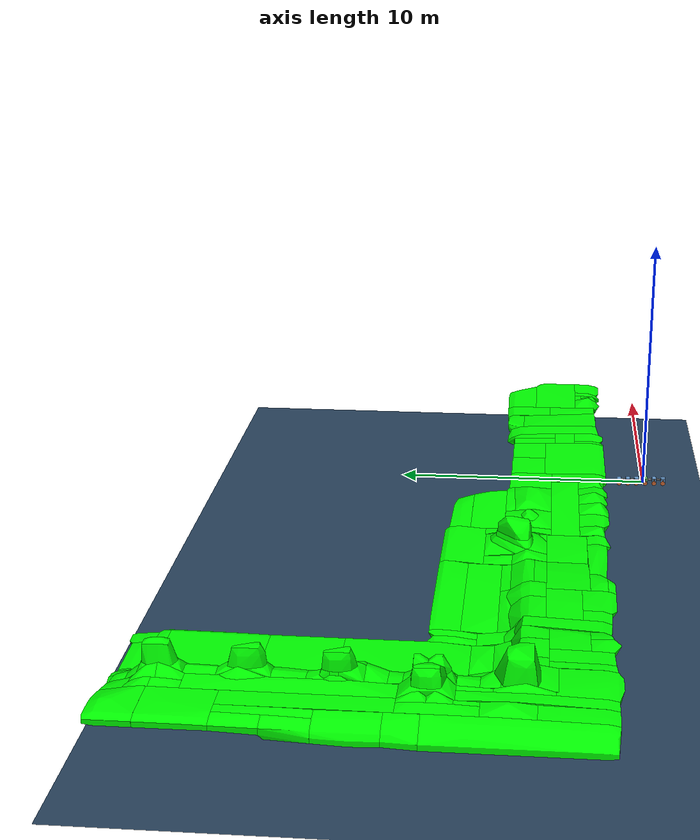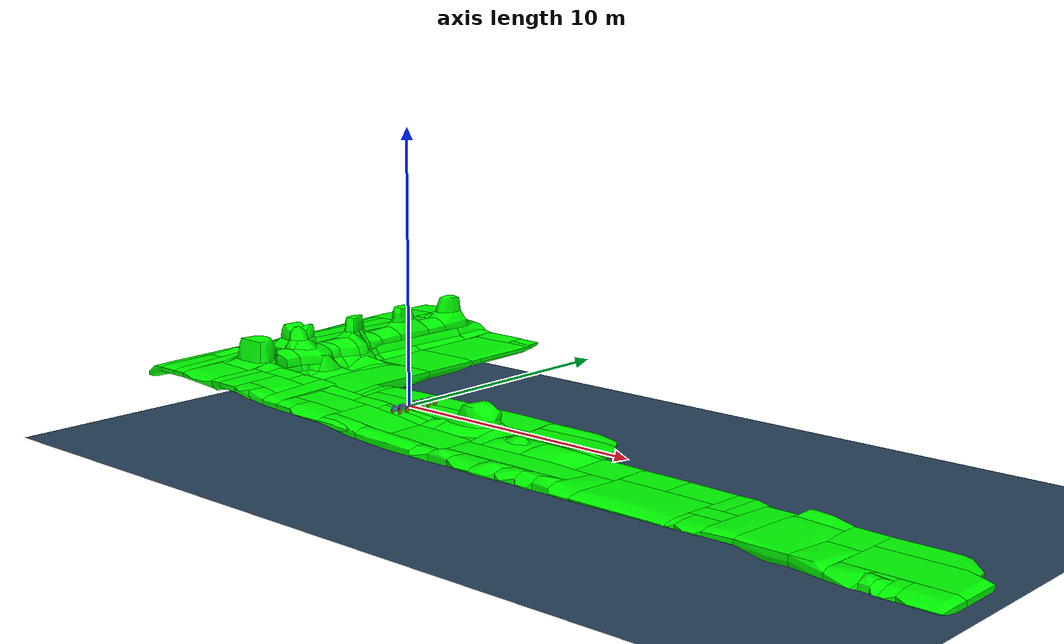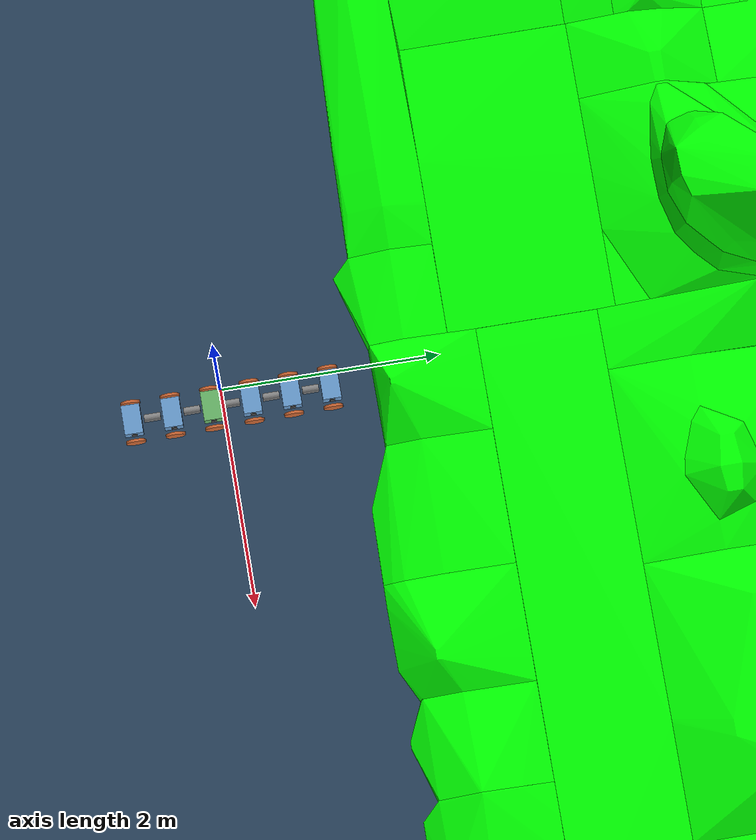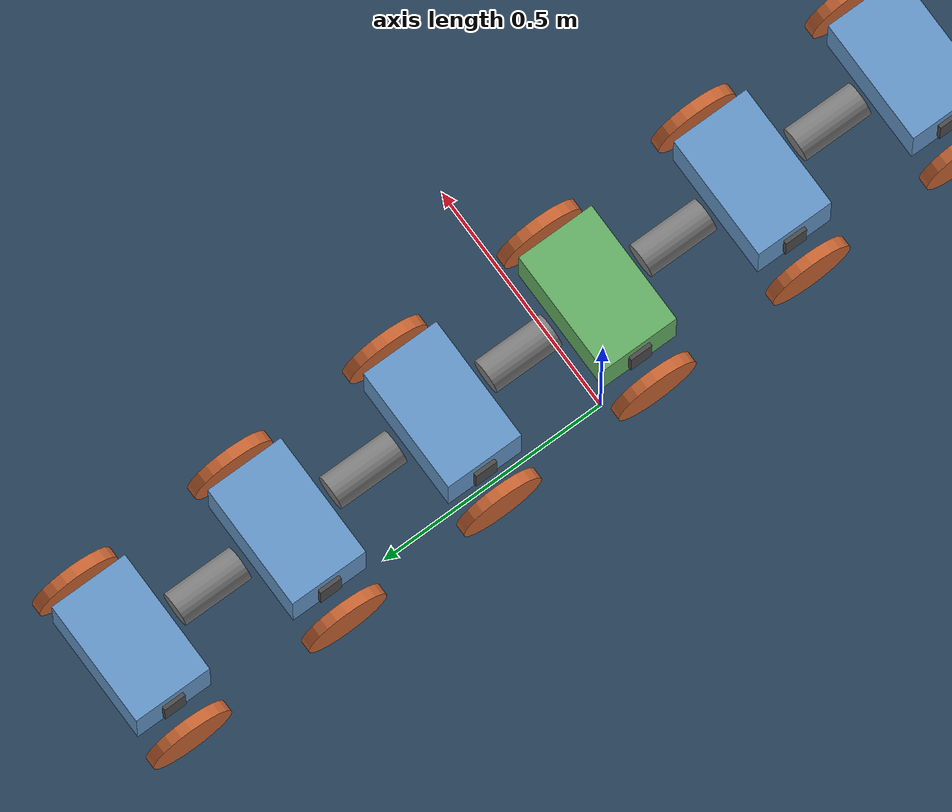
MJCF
<?xml version='1.0' encoding='UTF-8'?>
<mujoco model="o_leg_3sections">
  <option timestep="0.002" gravity="0 0 -9.81" iterations="50" solver="Newton"/>
  <visual>
    <global offwidth="1920" offheight="1080"/>
  </visual>
  <asset>
    <texture name="grid" type="2d" builtin="checker" rgb1=".1 .2 .3" rgb2=".2 .3 .4" width="300" height="300"/>
    <material name="grid" texture="grid" texrepeat="30 30" reflectance="0"/>
    <mesh name="construction_col_0" file="construction_collision_parts/construction_col_0.stl" scale="1 1 1"/>
    <mesh name="construction_col_1" file="construction_collision_parts/construction_col_1.stl" scale="1 1 1"/>
    <mesh name="construction_col_2" file="construction_collision_parts/construction_col_2.stl" scale="1 1 1"/>
    <mesh name="construction_col_3" file="construction_collision_parts/construction_col_3.stl" scale="1 1 1"/>
    <mesh name="construction_col_4" file="construction_collision_parts/construction_col_4.stl" scale="1 1 1"/>
    <mesh name="construction_col_5" file="construction_collision_parts/construction_col_5.stl" scale="1 1 1"/>
    <mesh name="construction_col_6" file="construction_collision_parts/construction_col_6.stl" scale="1 1 1"/>
    <mesh name="construction_col_7" file="construction_collision_parts/construction_col_7.stl" scale="1 1 1"/>
    <mesh name="construction_col_8" file="construction_collision_parts/construction_col_8.stl" scale="1 1 1"/>
    <mesh name="construction_col_9" file="construction_collision_parts/construction_col_9.stl" scale="1 1 1"/>
    <mesh name="construction_col_10" file="construction_collision_parts/construction_col_10.stl" scale="1 1 1"/>
    <mesh name="construction_col_11" file="construction_collision_parts/construction_col_11.stl" scale="1 1 1"/>
    <mesh name="construction_col_12" file="construction_collision_parts/construction_col_12.stl" scale="1 1 1"/>
    <mesh name="construction_col_13" file="construction_collision_parts/construction_col_13.stl" scale="1 1 1"/>
    <mesh name="construction_col_14" file="construction_collision_parts/construction_col_14.stl" scale="1 1 1"/>
    <mesh name="construction_col_15" file="construction_collision_parts/construction_col_15.stl" scale="1 1 1"/>
    <mesh name="construction_col_16" file="construction_collision_parts/construction_col_16.stl" scale="1 1 1"/>
    <mesh name="construction_col_17" file="construction_collision_parts/construction_col_17.stl" scale="1 1 1"/>
    <mesh name="construction_col_18" file="construction_collision_parts/construction_col_18.stl" scale="1 1 1"/>
    <mesh name="construction_col_19" file="construction_collision_parts/construction_col_19.stl" scale="1 1 1"/>
    <mesh name="construction_col_20" file="construction_collision_parts/construction_col_20.stl" scale="1 1 1"/>
    <mesh name="construction_col_21" file="construction_collision_parts/construction_col_21.stl" scale="1 1 1"/>
    <mesh name="construction_col_22" file="construction_collision_parts/construction_col_22.stl" scale="1 1 1"/>
    <mesh name="construction_col_23" file="construction_collision_parts/construction_col_23.stl" scale="1 1 1"/>
    <mesh name="construction_col_24" file="construction_collision_parts/construction_col_24.stl" scale="1 1 1"/>
    <mesh name="construction_col_25" file="construction_collision_parts/construction_col_25.stl" scale="1 1 1"/>
    <mesh name="construction_col_26" file="construction_collision_parts/construction_col_26.stl" scale="1 1 1"/>
    <mesh name="construction_col_27" file="construction_collision_parts/construction_col_27.stl" scale="1 1 1"/>
    <mesh name="construction_col_28" file="construction_collision_parts/construction_col_28.stl" scale="1 1 1"/>
    <mesh name="construction_col_29" file="construction_collision_parts/construction_col_29.stl" scale="1 1 1"/>
    <mesh name="construction_col_30" file="construction_collision_parts/construction_col_30.stl" scale="1 1 1"/>
    <mesh name="construction_col_31" file="construction_collision_parts/construction_col_31.stl" scale="1 1 1"/>
    <mesh name="construction_col_32" file="construction_collision_parts/construction_col_32.stl" scale="1 1 1"/>
    <mesh name="construction_col_33" file="construction_collision_parts/construction_col_33.stl" scale="1 1 1"/>
    <mesh name="construction_col_34" file="construction_collision_parts/construction_col_34.stl" scale="1 1 1"/>
    <mesh name="construction_col_35" file="construction_collision_parts/construction_col_35.stl" scale="1 1 1"/>
    <mesh name="construction_col_36" file="construction_collision_parts/construction_col_36.stl" scale="1 1 1"/>
    <mesh name="construction_col_37" file="construction_collision_parts/construction_col_37.stl" scale="1 1 1"/>
    <mesh name="construction_col_38" file="construction_collision_parts/construction_col_38.stl" scale="1 1 1"/>
    <mesh name="construction_col_39" file="construction_collision_parts/construction_col_39.stl" scale="1 1 1"/>
    <mesh name="construction_col_40" file="construction_collision_parts/construction_col_40.stl" scale="1 1 1"/>
    <mesh name="construction_col_41" file="construction_collision_parts/construction_col_41.stl" scale="1 1 1"/>
    <mesh name="construction_col_42" file="construction_collision_parts/construction_col_42.stl" scale="1 1 1"/>
    <mesh name="construction_col_43" file="construction_collision_parts/construction_col_43.stl" scale="1 1 1"/>
    <mesh name="construction_col_44" file="construction_collision_parts/construction_col_44.stl" scale="1 1 1"/>
    <mesh name="construction_col_45" file="construction_collision_parts/construction_col_45.stl" scale="1 1 1"/>
    <mesh name="construction_col_46" file="construction_collision_parts/construction_col_46.stl" scale="1 1 1"/>
    <mesh name="construction_col_47" file="construction_collision_parts/construction_col_47.stl" scale="1 1 1"/>
    <mesh name="construction_col_48" file="construction_collision_parts/construction_col_48.stl" scale="1 1 1"/>
    <mesh name="construction_col_49" file="construction_collision_parts/construction_col_49.stl" scale="1 1 1"/>
    <mesh name="construction_col_50" file="construction_collision_parts/construction_col_50.stl" scale="1 1 1"/>
    <mesh name="construction_col_51" file="construction_collision_parts/construction_col_51.stl" scale="1 1 1"/>
    <mesh name="construction_col_52" file="construction_collision_parts/construction_col_52.stl" scale="1 1 1"/>
    <mesh name="construction_col_53" file="construction_collision_parts/construction_col_53.stl" scale="1 1 1"/>
    <mesh name="construction_col_54" file="construction_collision_parts/construction_col_54.stl" scale="1 1 1"/>
    <mesh name="construction_col_55" file="construction_collision_parts/construction_col_55.stl" scale="1 1 1"/>
    <mesh name="construction_col_56" file="construction_collision_parts/construction_col_56.stl" scale="1 1 1"/>
    <mesh name="construction_col_57" file="construction_collision_parts/construction_col_57.stl" scale="1 1 1"/>
    <mesh name="construction_col_58" file="construction_collision_parts/construction_col_58.stl" scale="1 1 1"/>
    <mesh name="construction_col_59" file="construction_collision_parts/construction_col_59.stl" scale="1 1 1"/>
    <mesh name="construction_col_60" file="construction_collision_parts/construction_col_60.stl" scale="1 1 1"/>
    <mesh name="construction_col_61" file="construction_collision_parts/construction_col_61.stl" scale="1 1 1"/>
    <mesh name="construction_col_62" file="construction_collision_parts/construction_col_62.stl" scale="1 1 1"/>
    <mesh name="construction_col_63" file="construction_collision_parts/construction_col_63.stl" scale="1 1 1"/>
    <mesh name="construction_col_64" file="construction_collision_parts/construction_col_64.stl" scale="1 1 1"/>
    <mesh name="construction_col_65" file="construction_collision_parts/construction_col_65.stl" scale="1 1 1"/>
    <mesh name="construction_col_66" file="construction_collision_parts/construction_col_66.stl" scale="1 1 1"/>
    <mesh name="construction_col_67" file="construction_collision_parts/construction_col_67.stl" scale="1 1 1"/>
    <mesh name="construction_col_68" file="construction_collision_parts/construction_col_68.stl" scale="1 1 1"/>
    <mesh name="construction_col_69" file="construction_collision_parts/construction_col_69.stl" scale="1 1 1"/>
    <mesh name="construction_col_70" file="construction_collision_parts/construction_col_70.stl" scale="1 1 1"/>
    <mesh name="construction_col_71" file="construction_collision_parts/construction_col_71.stl" scale="1 1 1"/>
    <mesh name="construction_col_72" file="construction_collision_parts/construction_col_72.stl" scale="1 1 1"/>
    <mesh name="construction_col_73" file="construction_collision_parts/construction_col_73.stl" scale="1 1 1"/>
    <mesh name="construction_col_74" file="construction_collision_parts/construction_col_74.stl" scale="1 1 1"/>
    <mesh name="construction_col_75" file="construction_collision_parts/construction_col_75.stl" scale="1 1 1"/>
    <mesh name="construction_col_76" file="construction_collision_parts/construction_col_76.stl" scale="1 1 1"/>
    <mesh name="construction_col_77" file="construction_collision_parts/construction_col_77.stl" scale="1 1 1"/>
    <mesh name="construction_col_78" file="construction_collision_parts/construction_col_78.stl" scale="1 1 1"/>
    <mesh name="construction_col_79" file="construction_collision_parts/construction_col_79.stl" scale="1 1 1"/>
    <mesh name="construction_col_80" file="construction_collision_parts/construction_col_80.stl" scale="1 1 1"/>
    <mesh name="construction_col_81" file="construction_collision_parts/construction_col_81.stl" scale="1 1 1"/>
    <mesh name="construction_col_82" file="construction_collision_parts/construction_col_82.stl" scale="1 1 1"/>
    <mesh name="construction_col_83" file="construction_collision_parts/construction_col_83.stl" scale="1 1 1"/>
    <mesh name="construction_col_84" file="construction_collision_parts/construction_col_84.stl" scale="1 1 1"/>
    <mesh name="construction_col_85" file="construction_collision_parts/construction_col_85.stl" scale="1 1 1"/>
    <mesh name="construction_col_86" file="construction_collision_parts/construction_col_86.stl" scale="1 1 1"/>
    <mesh name="construction_col_87" file="construction_collision_parts/construction_col_87.stl" scale="1 1 1"/>
    <mesh name="construction_col_88" file="construction_collision_parts/construction_col_88.stl" scale="1 1 1"/>
    <mesh name="construction_col_89" file="construction_collision_parts/construction_col_89.stl" scale="1 1 1"/>
    <mesh name="construction_col_90" file="construction_collision_parts/construction_col_90.stl" scale="1 1 1"/>
    <mesh name="construction_col_91" file="construction_collision_parts/construction_col_91.stl" scale="1 1 1"/>
    <mesh name="construction_col_92" file="construction_collision_parts/construction_col_92.stl" scale="1 1 1"/>
    <mesh name="construction_col_93" file="construction_collision_parts/construction_col_93.stl" scale="1 1 1"/>
    <mesh name="construction_col_94" file="construction_collision_parts/construction_col_94.stl" scale="1 1 1"/>
    <mesh name="construction_col_95" file="construction_collision_parts/construction_col_95.stl" scale="1 1 1"/>
    <mesh name="construction_col_96" file="construction_collision_parts/construction_col_96.stl" scale="1 1 1"/>
    <mesh name="construction_col_97" file="construction_collision_parts/construction_col_97.stl" scale="1 1 1"/>
    <mesh name="construction_col_98" file="construction_collision_parts/construction_col_98.stl" scale="1 1 1"/>
    <mesh name="construction_col_99" file="construction_collision_parts/construction_col_99.stl" scale="1 1 1"/>
    <mesh name="construction_col_100" file="construction_collision_parts/construction_col_100.stl" scale="1 1 1"/>
    <mesh name="construction_col_101" file="construction_collision_parts/construction_col_101.stl" scale="1 1 1"/>
    <mesh name="construction_col_102" file="construction_collision_parts/construction_col_102.stl" scale="1 1 1"/>
    <mesh name="construction_col_103" file="construction_collision_parts/construction_col_103.stl" scale="1 1 1"/>
    <mesh name="construction_col_104" file="construction_collision_parts/construction_col_104.stl" scale="1 1 1"/>
    <mesh name="construction_col_105" file="construction_collision_parts/construction_col_105.stl" scale="1 1 1"/>
    <mesh name="construction_col_106" file="construction_collision_parts/construction_col_106.stl" scale="1 1 1"/>
    <mesh name="construction_col_107" file="construction_collision_parts/construction_col_107.stl" scale="1 1 1"/>
    <mesh name="construction_col_108" file="construction_collision_parts/construction_col_108.stl" scale="1 1 1"/>
    <mesh name="construction_col_109" file="construction_collision_parts/construction_col_109.stl" scale="1 1 1"/>
    <mesh name="construction_col_110" file="construction_collision_parts/construction_col_110.stl" scale="1 1 1"/>
    <mesh name="construction_col_111" file="construction_collision_parts/construction_col_111.stl" scale="1 1 1"/>
    <mesh name="construction_col_112" file="construction_collision_parts/construction_col_112.stl" scale="1 1 1"/>
    <mesh name="construction_col_113" file="construction_collision_parts/construction_col_113.stl" scale="1 1 1"/>
    <mesh name="construction_col_114" file="construction_collision_parts/construction_col_114.stl" scale="1 1 1"/>
    <mesh name="construction_col_115" file="construction_collision_parts/construction_col_115.stl" scale="1 1 1"/>
    <mesh name="construction_col_116" file="construction_collision_parts/construction_col_116.stl" scale="1 1 1"/>
    <mesh name="construction_col_117" file="construction_collision_parts/construction_col_117.stl" scale="1 1 1"/>
    <mesh name="construction_col_118" file="construction_collision_parts/construction_col_118.stl" scale="1 1 1"/>
    <mesh name="construction_col_119" file="construction_collision_parts/construction_col_119.stl" scale="1 1 1"/>
    <mesh name="construction_col_120" file="construction_collision_parts/construction_col_120.stl" scale="1 1 1"/>
    <mesh name="construction_col_121" file="construction_collision_parts/construction_col_121.stl" scale="1 1 1"/>
    <mesh name="construction_col_122" file="construction_collision_parts/construction_col_122.stl" scale="1 1 1"/>
    <mesh name="construction_col_123" file="construction_collision_parts/construction_col_123.stl" scale="1 1 1"/>
    <mesh name="construction_col_124" file="construction_collision_parts/construction_col_124.stl" scale="1 1 1"/>
    <mesh name="construction_col_125" file="construction_collision_parts/construction_col_125.stl" scale="1 1 1"/>
    <mesh name="construction_col_126" file="construction_collision_parts/construction_col_126.stl" scale="1 1 1"/>
    <mesh name="construction_col_127" file="construction_collision_parts/construction_col_127.stl" scale="1 1 1"/>
    <mesh name="construction_col_128" file="construction_collision_parts/construction_col_128.stl" scale="1 1 1"/>
    <mesh name="construction_col_129" file="construction_collision_parts/construction_col_129.stl" scale="1 1 1"/>
    <mesh name="construction_col_130" file="construction_collision_parts/construction_col_130.stl" scale="1 1 1"/>
    <mesh name="construction_col_131" file="construction_collision_parts/construction_col_131.stl" scale="1 1 1"/>
    <mesh name="construction_col_132" file="construction_collision_parts/construction_col_132.stl" scale="1 1 1"/>
    <mesh name="construction_col_133" file="construction_collision_parts/construction_col_133.stl" scale="1 1 1"/>
    <mesh name="construction_col_134" file="construction_collision_parts/construction_col_134.stl" scale="1 1 1"/>
    <mesh name="construction_col_135" file="construction_collision_parts/construction_col_135.stl" scale="1 1 1"/>
    <mesh name="construction_col_136" file="construction_collision_parts/construction_col_136.stl" scale="1 1 1"/>
    <mesh name="construction_col_137" file="construction_collision_parts/construction_col_137.stl" scale="1 1 1"/>
    <mesh name="construction_col_138" file="construction_collision_parts/construction_col_138.stl" scale="1 1 1"/>
    <mesh name="construction_col_139" file="construction_collision_parts/construction_col_139.stl" scale="1 1 1"/>
    <mesh name="construction_col_140" file="construction_collision_parts/construction_col_140.stl" scale="1 1 1"/>
    <mesh name="construction_col_141" file="construction_collision_parts/construction_col_141.stl" scale="1 1 1"/>
    <mesh name="construction_col_142" file="construction_collision_parts/construction_col_142.stl" scale="1 1 1"/>
    <mesh name="construction_col_143" file="construction_collision_parts/construction_col_143.stl" scale="1 1 1"/>
    <mesh name="construction_col_144" file="construction_collision_parts/construction_col_144.stl" scale="1 1 1"/>
    <mesh name="construction_col_145" file="construction_collision_parts/construction_col_145.stl" scale="1 1 1"/>
    <mesh name="construction_col_146" file="construction_collision_parts/construction_col_146.stl" scale="1 1 1"/>
    <mesh name="construction_col_147" file="construction_collision_parts/construction_col_147.stl" scale="1 1 1"/>
    <mesh name="construction_col_148" file="construction_collision_parts/construction_col_148.stl" scale="1 1 1"/>
    <mesh name="construction_col_149" file="construction_collision_parts/construction_col_149.stl" scale="1 1 1"/>
    <mesh name="construction_col_150" file="construction_collision_parts/construction_col_150.stl" scale="1 1 1"/>
    <mesh name="construction_col_151" file="construction_collision_parts/construction_col_151.stl" scale="1 1 1"/>
    <mesh name="construction_col_152" file="construction_collision_parts/construction_col_152.stl" scale="1 1 1"/>
    <mesh name="construction_col_153" file="construction_collision_parts/construction_col_153.stl" scale="1 1 1"/>
    <mesh name="construction_col_154" file="construction_collision_parts/construction_col_154.stl" scale="1 1 1"/>
    <mesh name="construction_col_155" file="construction_collision_parts/construction_col_155.stl" scale="1 1 1"/>
    <mesh name="construction_col_156" file="construction_collision_parts/construction_col_156.stl" scale="1 1 1"/>
    <mesh name="construction_col_157" file="construction_collision_parts/construction_col_157.stl" scale="1 1 1"/>
    <mesh name="construction_col_158" file="construction_collision_parts/construction_col_158.stl" scale="1 1 1"/>
    <mesh name="construction_col_159" file="construction_collision_parts/construction_col_159.stl" scale="1 1 1"/>
    <mesh name="construction_col_160" file="construction_collision_parts/construction_col_160.stl" scale="1 1 1"/>
    <mesh name="construction_col_161" file="construction_collision_parts/construction_col_161.stl" scale="1 1 1"/>
    <mesh name="construction_col_162" file="construction_collision_parts/construction_col_162.stl" scale="1 1 1"/>
    <mesh name="construction_col_163" file="construction_collision_parts/construction_col_163.stl" scale="1 1 1"/>
    <mesh name="construction_col_164" file="construction_collision_parts/construction_col_164.stl" scale="1 1 1"/>
    <mesh name="construction_col_165" file="construction_collision_parts/construction_col_165.stl" scale="1 1 1"/>
    <mesh name="construction_col_166" file="construction_collision_parts/construction_col_166.stl" scale="1 1 1"/>
    <mesh name="construction_col_167" file="construction_collision_parts/construction_col_167.stl" scale="1 1 1"/>
    <mesh name="construction_col_168" file="construction_collision_parts/construction_col_168.stl" scale="1 1 1"/>
    <mesh name="construction_col_169" file="construction_collision_parts/construction_col_169.stl" scale="1 1 1"/>
  </asset>
  <worldbody>
    <geom name="ground" type="plane" pos="0 0 -4.24" size="20 20 0.8" material="grid" friction="0.5 0 0"/>
    <light name="strong_light" pos="0 0 10" dir="0 0 -4" directional="true" diffuse="1 1 4" specular="0.3 0.3 0.6" active="true" castshadow="false" cutoff="100" exponent="10"/>
    <camera name="side_cam1" pos="9.574 -1.818 -3.074" xyaxes="-0.011 1.000 -0.000 -0.068 -0.001 0.998"/>
    <camera name="side_cam2" pos="1.566 -1.906 6.7" xyaxes="-0.008 1.000 0.000 -0.989 -0.008 0.148"/>

    <!-- ===== SECTION 3 (root) ===== -->
    <body name="body_middle6" pos="-0.01428 0.72368 0.016">
      <joint name="root_free" type="free"/>
      <geom size="0.133315 0.083946 0.074889" pos="0.148834 0.2569 0.05105" type="box" rgba="0.4 0.6 0.8 1"/>
      <inertial pos="0.148834 0.2569 0.05105" mass="0.08684000" diaginertia="0.00009158204 0.00016920278 0.00017961293"/>

      <body name="motor_L6" pos="0 0 0">
        <inertial pos="0.2705 0.25876 0.045268" mass="0.04388000" diaginertia="0.00000721932 0.00001081797 0.00001232792"/>
        <geom size="0.018 0.024 0.043" pos="0.2705 0.25876 0.045268" type="box" rgba="0.3 0.3 0.3 1"/>
        <body name="o_leg_L6" pos="0 0 0">
          <joint name="knee_joint_L6" type="hinge" pos="-0.019528 0.2588 0.02152" axis="1 0 0" damping="0.5"/>
          <inertial pos="0.32814 0.25878 -0.054268" mass="0.10587964" diaginertia="0.00004860956 0.00005124607 0.00009533636"/>
          <geom name="o_leg_L6" size="0.09 0.012" pos="0.32814 0.25878 -0.054268" quat="0.707105 0 0.707108 0" type="cylinder" rgba="0.8 0.4 0.2 1"/>
        </body>
      </body>

      <body name="motor_R6" pos="0 0 0">
        <inertial pos="0.025424 0.25882 0.045208" mass="0.04388000" diaginertia="0.00000721932 0.00001081797 0.00001232792"/>
        <geom size="0.018 0.024 0.043" pos="0.025424 0.25882 0.045208" type="box" rgba="0.3 0.3 0.3 1"/>
        <body name="o_leg_R6" pos="0 0 0">
          <joint name="knee_joint_R6" type="hinge" pos="-0.019528 0.2588 0.02152" axis="1 0 0" damping="0.5"/>
          <inertial pos="-0.032212 0.2588 -0.054328" mass="0.10587964" diaginertia="0.00004860956 0.00005124607 0.00009533636"/>
          <geom name="o_leg_R6" size="0.09 0.012" pos="-0.032212 0.2588 -0.054328" quat="0.707105 0 0.707108 0" type="cylinder" rgba="0.8 0.4 0.2 1"/>
        </body>
      </body>

      <body name="vertjoint6" pos="0 0 0">
        <joint name="vertjoint_hinge6" type="hinge" pos="0.18981 0.17395 0.05716" axis="1 0 0" range="-90 90" damping="0.5"/>
        <inertial pos="0.155952 0.077594 0.055742" mass="0.15853000" diaginertia="0.00004786090 0.00019459966 0.00019531491"/>
        <geom size="0.036 0.075" pos="0.155952 0.077594 0.055742" quat="0.499998 -0.500002 0.5 0.5" type="cylinder" rgba="0.5 0.5 0.5 1"/>

        <body name="horzjoint6_body" pos="0 0 0">
          <joint name="horzjoint6" type="hinge" pos="0.15506 -0.01805 0.091904" axis="0 0 1" range="-90 90" damping="0.5"/>
          <inertial pos="0.15506 -0.01805 0.091904" mass="0.0004" diaginertia="0.000001 0.000001 0.000001"/>

          <!-- ===== SECTION 2 ===== -->
          <body name="body_middle5" pos="0.00714 -0.36184 0.006">
            <geom size="0.133315 0.083946 0.074889" pos="0.148834 0.2569 0.05105" type="box" rgba="0.4 0.6 0.8 1"/>
            <inertial pos="0.148834 0.2569 0.05105" mass="0.08684000" diaginertia="0.00009158204 0.00016920278 0.00017961293"/>

            <body name="motor_L5" pos="0 0 0">
              <inertial pos="0.2705 0.25876 0.045268" mass="0.04388000" diaginertia="0.00000721932 0.00001081797 0.00001232792"/>
              <geom size="0.018 0.024 0.043" pos="0.2705 0.25876 0.045268" type="box" rgba="0.3 0.3 0.3 1"/>
              <body name="o_leg_L5" pos="0 0 0">
                <joint name="knee_joint_L5" type="hinge" pos="-0.019528 0.2588 0.02152" axis="1 0 0" damping="0.5"/>
                <inertial pos="0.32814 0.25878 -0.054268" mass="0.10587964" diaginertia="0.00004860956 0.00005124607 0.00009533636"/>
                <geom name="o_leg_L5" size="0.09 0.012" pos="0.32814 0.25878 -0.054268" quat="0.707105 0 0.707108 0" type="cylinder" rgba="0.8 0.4 0.2 1"/>
              </body>
            </body>

            <body name="motor_R5" pos="0 0 0">
              <inertial pos="0.025424 0.25882 0.045208" mass="0.04388000" diaginertia="0.00000721932 0.00001081797 0.00001232792"/>
              <geom size="0.018 0.024 0.043" pos="0.025424 0.25882 0.045208" type="box" rgba="0.3 0.3 0.3 1"/>
              <body name="o_leg_R5" pos="0 0 0">
                <joint name="knee_joint_R5" type="hinge" pos="-0.019528 0.2588 0.02152" axis="1 0 0" damping="0.5"/>
                <inertial pos="-0.032212 0.2588 -0.054328" mass="0.10587964" diaginertia="0.00004860956 0.00005124607 0.00009533636"/>
                <geom name="o_leg_R5" size="0.09 0.012" pos="-0.032212 0.2588 -0.054328" quat="0.707105 0 0.707108 0" type="cylinder" rgba="0.8 0.4 0.2 1"/>
              </body>
            </body>

            <body name="vertjoint5" pos="0 0 0">
              <joint name="vertjoint_hinge5" type="hinge" pos="0.18981 0.17395 0.05716" axis="1 0 0" range="-90 90" damping="0.5"/>
              <inertial pos="0.155952 0.077594 0.055742" mass="0.15853000" diaginertia="0.00004786090 0.00019459966 0.00019531491"/>
              <geom size="0.036 0.075" pos="0.155952 0.077594 0.055742" quat="0.499998 -0.500002 0.5 0.5" type="cylinder" rgba="0.5 0.5 0.5 1"/>

              <body name="horzjoint5_body" pos="0 0 0">
                <joint name="horzjoint5" type="hinge" pos="0.15506 -0.01805 0.091904" axis="0 0 1" range="-90 90" damping="0.5"/>
                <inertial pos="0.15506 -0.01805 0.091904" mass="0.0004" diaginertia="0.000001 0.000001 0.000001"/>

                <!-- ===== SECTION 1 ===== -->
                <body name="body_middle4" pos="0.00714 -0.36184 0.006">
                  <geom size="0.133315 0.083946 0.074889" pos="0.148834 0.2569 0.05105" type="box" rgba="0.4 0.6 0.8 1"/>
                  <inertial pos="0.148834 0.2569 0.05105" mass="0.08684000" diaginertia="0.00009158204 0.00016920278 0.00017961293"/>

                  <body name="motor_L4" pos="0 0 0">
                    <inertial pos="0.2705 0.25876 0.045268" mass="0.04388000" diaginertia="0.00000721932 0.00001081797 0.00001232792"/>
                    <geom size="0.018 0.024 0.043" pos="0.2705 0.25876 0.045268" type="box" rgba="0.3 0.3 0.3 1"/>
                    <body name="o_leg_L4" pos="0 0 0">
                      <joint name="knee_joint_L4" type="hinge" pos="-0.019528 0.2588 0.02152" axis="1 0 0" damping="0.5"/>
                      <inertial pos="0.32814 0.25878 -0.054268" mass="0.10587964" diaginertia="0.00004860956 0.00005124607 0.00009533636"/>
                      <geom name="o_leg_L4" size="0.09 0.012" pos="0.32814 0.25878 -0.054268" quat="0.707105 0 0.707108 0" type="cylinder" rgba="0.8 0.4 0.2 1"/>
                    </body>
                  </body>

                  <body name="motor_R4" pos="0 0 0">
                    <inertial pos="0.025424 0.25882 0.045208" mass="0.04388000" diaginertia="0.00000721932 0.00001081797 0.00001232792"/>
                    <geom size="0.018 0.024 0.043" pos="0.025424 0.25882 0.045208" type="box" rgba="0.3 0.3 0.3 1"/>
                    <body name="o_leg_R4" pos="0 0 0">
                      <joint name="knee_joint_R4" type="hinge" pos="-0.019528 0.2588 0.02152" axis="1 0 0" damping="0.5"/>
                      <inertial pos="-0.032212 0.2588 -0.054328" mass="0.10587964" diaginertia="0.00004860956 0.00005124607 0.00009533636"/>
                      <geom name="o_leg_R4" size="0.09 0.012" pos="-0.032212 0.2588 -0.054328" quat="0.707105 0 0.707108 0" type="cylinder" rgba="0.8 0.4 0.2 1"/>
                    </body>
                  </body>

                  <body name="vertjoint4" pos="0 0 0">
                    <joint name="vertjoint_hinge4" type="hinge" pos="0.18981 0.17395 0.05716" axis="1 0 0" range="-90 90" damping="0.5"/>
                    <inertial pos="0.155952 0.077594 0.055742" mass="0.15853000" diaginertia="0.00004786090 0.00019459966 0.00019531491"/>
                    <geom size="0.036 0.075" pos="0.155952 0.077594 0.055742" quat="0.499998 -0.500002 0.5 0.5" type="cylinder" rgba="0.5 0.5 0.5 1"/>

                    <body name="horzjoint4_body" pos="0 0 0">
                      <joint name="horzjoint4" type="hinge" pos="0.15506 -0.01805 0.091904" axis="0 0 1" range="-90 90" damping="0.5"/>
                      <inertial pos="0.15506 -0.01805 0.091904" mass="0.0004" diaginertia="0.000001 0.000001 0.000001"/>

                      <!-- ===== SECTION 4 ===== -->
                      <body name="body_middle3" pos="0.00714 -0.36184 0.006">
                        <camera name="robot_center_scene_camera" pos="0.148 0.128 0.24" xyaxes="-1 0 0 0 0 1" fovy="90"/>
                        <geom size="0.133315 0.083946 0.074889" pos="0.148834 0.2569 0.05105" type="box" rgba="0.4 0.7 0.4 1"/>
                        <inertial pos="0.148834 0.2569 0.05105" mass="0.08684000" diaginertia="0.00009158204 0.00016920278 0.00017961293"/>

                        <body name="motor_L3" pos="0 0 0">
                          <inertial pos="0.2705 0.25876 0.045268" mass="0.04388000" diaginertia="0.00000721932 0.00001081797 0.00001232792"/>
                          <geom size="0.018 0.024 0.043" pos="0.2705 0.25876 0.045268" type="box" rgba="0.3 0.3 0.3 1"/>
                          <body name="o_leg_L3" pos="0 0 0">
                            <joint name="knee_joint_L3" type="hinge" pos="-0.019528 0.2588 0.02152" axis="1 0 0" damping="0.5"/>
                            <inertial pos="0.32814 0.25878 -0.054268" mass="0.10587964" diaginertia="0.00004860956 0.00005124607 0.00009533636"/>
                            <geom name="o_leg_L3" size="0.09 0.012" pos="0.32814 0.25878 -0.054268" quat="0.707105 0 0.707108 0" type="cylinder" rgba="0.8 0.4 0.2 1"/>
                          </body>
                        </body>

                        <body name="motor_R3" pos="0 0 0">
                          <inertial pos="0.025424 0.25882 0.045208" mass="0.04388000" diaginertia="0.00000721932 0.00001081797 0.00001232792"/>
                          <geom size="0.018 0.024 0.043" pos="0.025424 0.25882 0.045208" type="box" rgba="0.3 0.3 0.3 1"/>
                          <body name="o_leg_R3" pos="0 0 0">
                            <joint name="knee_joint_R3" type="hinge" pos="-0.019528 0.2588 0.02152" axis="1 0 0" damping="0.5"/>
                            <inertial pos="-0.032212 0.2588 -0.054328" mass="0.10587964" diaginertia="0.00004860956 0.00005124607 0.00009533636"/>
                            <geom name="o_leg_R3" size="0.09 0.012" pos="-0.032212 0.2588 -0.054328" quat="0.707105 0 0.707108 0" type="cylinder" rgba="0.8 0.4 0.2 1"/>
                          </body>
                        </body>

                        <body name="vertjoint3" pos="0 0 0">
                          <joint name="vertjoint_hinge3" type="hinge" pos="0.18981 0.17395 0.05716" axis="1 0 0" range="-90 90" damping="0.5"/>
                          <inertial pos="0.155952 0.077594 0.055742" mass="0.15853000" diaginertia="0.00004786090 0.00019459966 0.00019531491"/>
                          <geom size="0.036 0.075" pos="0.155952 0.077594 0.055742" quat="0.499998 -0.500002 0.5 0.5" type="cylinder" rgba="0.5 0.5 0.5 1"/>

                          <body name="horzjoint3_body" pos="0 0 0">
                            <joint name="horzjoint3" type="hinge" pos="0.15506 -0.01805 0.091904" axis="0 0 1" range="-90 90" damping="0.5"/>
                            <inertial pos="0.15506 -0.01805 0.091904" mass="0.0004" diaginertia="0.000001 0.000001 0.000001"/>

                            <!-- ===== SECTION 5 ===== -->
                            <body name="body_middle2" pos="0.00714 -0.36184 0.006">
                              <geom size="0.133315 0.083946 0.074889" pos="0.148834 0.2569 0.05105" type="box" rgba="0.4 0.6 0.8 1"/>
                              <inertial pos="0.148834 0.2569 0.05105" mass="0.08684000" diaginertia="0.00009158204 0.00016920278 0.00017961293"/>

                              <body name="motor_L2" pos="0 0 0">
                                <inertial pos="0.2705 0.25876 0.045268" mass="0.04388000" diaginertia="0.00000721932 0.00001081797 0.00001232792"/>
                                <geom size="0.018 0.024 0.043" pos="0.2705 0.25876 0.045268" type="box" rgba="0.3 0.3 0.3 1"/>
                                <body name="o_leg_L2" pos="0 0 0">
                                  <joint name="knee_joint_L2" type="hinge" pos="-0.019528 0.2588 0.02152" axis="1 0 0" damping="0.5"/>
                                  <inertial pos="0.32814 0.25878 -0.054268" mass="0.10587964" diaginertia="0.00004860956 0.00005124607 0.00009533636"/>
                                  <geom name="o_leg_L2" size="0.09 0.012" pos="0.32814 0.25878 -0.054268" quat="0.707105 0 0.707108 0" type="cylinder" rgba="0.8 0.4 0.2 1"/>
                                </body>
                              </body>

                              <body name="motor_R2" pos="0 0 0">
                                <inertial pos="0.025424 0.25882 0.045208" mass="0.04388000" diaginertia="0.00000721932 0.00001081797 0.00001232792"/>
                                <geom size="0.018 0.024 0.043" pos="0.025424 0.25882 0.045208" type="box" rgba="0.3 0.3 0.3 1"/>
                                <body name="o_leg_R2" pos="0 0 0">
                                  <joint name="knee_joint_R2" type="hinge" pos="-0.019528 0.2588 0.02152" axis="1 0 0" damping="0.5"/>
                                  <inertial pos="-0.032212 0.2588 -0.054328" mass="0.10587964" diaginertia="0.00004860956 0.00005124607 0.00009533636"/>
                                  <geom name="o_leg_R2" size="0.09 0.012" pos="-0.032212 0.2588 -0.054328" quat="0.707105 0 0.707108 0" type="cylinder" rgba="0.8 0.4 0.2 1"/>
                                </body>
                              </body>

                              <body name="vertjoint2" pos="0 0 0">
                                <joint name="vertjoint_hinge2" type="hinge" pos="0.18981 0.17395 0.05716" axis="1 0 0" range="-90 90" damping="0.5"/>
                                <inertial pos="0.155952 0.077594 0.055742" mass="0.15853000" diaginertia="0.00004786090 0.00019459966 0.00019531491"/>
                                <geom size="0.036 0.075" pos="0.155952 0.077594 0.055742" quat="0.499998 -0.500002 0.5 0.5" type="cylinder" rgba="0.5 0.5 0.5 1"/>

                                <body name="horzjoint2_body" pos="0 0 0">
                                  <joint name="horzjoint2" type="hinge" pos="0.15506 -0.01805 0.091904" axis="0 0 1" range="-90 90" damping="0.5"/>
                                  <inertial pos="0.15506 -0.01805 0.091904" mass="0.0004" diaginertia="0.000001 0.000001 0.000001"/>

                                  <!-- ===== SECTION 6 (tail) ===== -->
                                  <body name="body_middle1" pos="0.00714 -0.36184 0.006">
                                    <geom size="0.133315 0.083946 0.074889" pos="0.148834 0.2569 0.05105" type="box" rgba="0.4 0.6 0.8 1"/>
                                    <inertial pos="0.148834 0.2569 0.05105" mass="0.08684000" diaginertia="0.00009158204 0.00016920278 0.00017961293"/>

                                    <body name="motor_L1" pos="0 0 0">
                                      <inertial pos="0.2705 0.25876 0.045268" mass="0.04388000" diaginertia="0.00000721932 0.00001081797 0.00001232792"/>
                                      <geom size="0.018 0.024 0.043" pos="0.2705 0.25876 0.045268" type="box" rgba="0.3 0.3 0.3 1"/>
                                      <body name="o_leg_L1" pos="0 0 0">
                                        <joint name="knee_joint_L1" type="hinge" pos="-0.019528 0.2588 0.02152" axis="1 0 0" damping="0.5"/>
                                        <inertial pos="0.32814 0.25878 -0.054268" mass="0.10587964" diaginertia="0.00004860956 0.00005124607 0.00009533636"/>
                                        <geom name="o_leg_L1" size="0.09 0.012" pos="0.32814 0.25878 -0.054268" quat="0.707105 0 0.707108 0" type="cylinder" rgba="0.8 0.4 0.2 1"/>
                                      </body>
                                    </body>

                                    <body name="motor_R1" pos="0 0 0">
                                      <inertial pos="0.025424 0.25882 0.045208" mass="0.04388000" diaginertia="0.00000721932 0.00001081797 0.00001232792"/>
                                      <geom size="0.018 0.024 0.043" pos="0.025424 0.25882 0.045208" type="box" rgba="0.3 0.3 0.3 1"/>
                                      <body name="o_leg_R1" pos="0 0 0">
                                        <joint name="knee_joint_R1" type="hinge" pos="-0.019528 0.2588 0.02152" axis="1 0 0" damping="0.5"/>
                                        <inertial pos="-0.032212 0.2588 -0.054328" mass="0.10587964" diaginertia="0.00004860956 0.00005124607 0.00009533636"/>
                                        <geom name="o_leg_R1" size="0.09 0.012" pos="-0.032212 0.2588 -0.054328" quat="0.707105 0 0.707108 0" type="cylinder" rgba="0.8 0.4 0.2 1"/>
                                      </body>
                                    </body>

                                  </body>
                                </body>
                              </body>
                            </body>
                          </body>
                        </body>
                      </body>
                    </body>
                  </body>
                </body>
              </body>
            </body>
          </body>
        </body>
      </body>
    </body>
    <body name="construction_collision_body" pos="10 0 -2.5">
      <geom name="construction_col_geom_0" type="mesh" mesh="construction_col_0" contype="1" conaffinity="1" rgba="0 1 0 1"/>
      <geom name="construction_col_geom_1" type="mesh" mesh="construction_col_1" contype="1" conaffinity="1" rgba="0 1 0 1"/>
      <geom name="construction_col_geom_2" type="mesh" mesh="construction_col_2" contype="1" conaffinity="1" rgba="0 1 0 1"/>
      <geom name="construction_col_geom_3" type="mesh" mesh="construction_col_3" contype="1" conaffinity="1" rgba="0 1 0 1"/>
      <geom name="construction_col_geom_4" type="mesh" mesh="construction_col_4" contype="1" conaffinity="1" rgba="0 1 0 1"/>
      <geom name="construction_col_geom_5" type="mesh" mesh="construction_col_5" contype="1" conaffinity="1" rgba="0 1 0 1"/>
      <geom name="construction_col_geom_6" type="mesh" mesh="construction_col_6" contype="1" conaffinity="1" rgba="0 1 0 1"/>
      <geom name="construction_col_geom_7" type="mesh" mesh="construction_col_7" contype="1" conaffinity="1" rgba="0 1 0 1"/>
      <geom name="construction_col_geom_8" type="mesh" mesh="construction_col_8" contype="1" conaffinity="1" rgba="0 1 0 1"/>
      <geom name="construction_col_geom_9" type="mesh" mesh="construction_col_9" contype="1" conaffinity="1" rgba="0 1 0 1"/>
      <geom name="construction_col_geom_10" type="mesh" mesh="construction_col_10" contype="1" conaffinity="1" rgba="0 1 0 1"/>
      <geom name="construction_col_geom_11" type="mesh" mesh="construction_col_11" contype="1" conaffinity="1" rgba="0 1 0 1"/>
      <geom name="construction_col_geom_12" type="mesh" mesh="construction_col_12" contype="1" conaffinity="1" rgba="0 1 0 1"/>
      <geom name="construction_col_geom_13" type="mesh" mesh="construction_col_13" contype="1" conaffinity="1" rgba="0 1 0 1"/>
      <geom name="construction_col_geom_14" type="mesh" mesh="construction_col_14" contype="1" conaffinity="1" rgba="0 1 0 1"/>
      <geom name="construction_col_geom_15" type="mesh" mesh="construction_col_15" contype="1" conaffinity="1" rgba="0 1 0 1"/>
      <geom name="construction_col_geom_16" type="mesh" mesh="construction_col_16" contype="1" conaffinity="1" rgba="0 1 0 1"/>
      <geom name="construction_col_geom_17" type="mesh" mesh="construction_col_17" contype="1" conaffinity="1" rgba="0 1 0 1"/>
      <geom name="construction_col_geom_18" type="mesh" mesh="construction_col_18" contype="1" conaffinity="1" rgba="0 1 0 1"/>
      <geom name="construction_col_geom_19" type="mesh" mesh="construction_col_19" contype="1" conaffinity="1" rgba="0 1 0 1"/>
      <geom name="construction_col_geom_20" type="mesh" mesh="construction_col_20" contype="1" conaffinity="1" rgba="0 1 0 1"/>
      <geom name="construction_col_geom_21" type="mesh" mesh="construction_col_21" contype="1" conaffinity="1" rgba="0 1 0 1"/>
      <geom name="construction_col_geom_22" type="mesh" mesh="construction_col_22" contype="1" conaffinity="1" rgba="0 1 0 1"/>
      <geom name="construction_col_geom_23" type="mesh" mesh="construction_col_23" contype="1" conaffinity="1" rgba="0 1 0 1"/>
      <geom name="construction_col_geom_24" type="mesh" mesh="construction_col_24" contype="1" conaffinity="1" rgba="0 1 0 1"/>
      <geom name="construction_col_geom_25" type="mesh" mesh="construction_col_25" contype="1" conaffinity="1" rgba="0 1 0 1"/>
      <geom name="construction_col_geom_26" type="mesh" mesh="construction_col_26" contype="1" conaffinity="1" rgba="0 1 0 1"/>
      <geom name="construction_col_geom_27" type="mesh" mesh="construction_col_27" contype="1" conaffinity="1" rgba="0 1 0 1"/>
      <geom name="construction_col_geom_28" type="mesh" mesh="construction_col_28" contype="1" conaffinity="1" rgba="0 1 0 1"/>
      <geom name="construction_col_geom_29" type="mesh" mesh="construction_col_29" contype="1" conaffinity="1" rgba="0 1 0 1"/>
      <geom name="construction_col_geom_30" type="mesh" mesh="construction_col_30" contype="1" conaffinity="1" rgba="0 1 0 1"/>
      <geom name="construction_col_geom_31" type="mesh" mesh="construction_col_31" contype="1" conaffinity="1" rgba="0 1 0 1"/>
      <geom name="construction_col_geom_32" type="mesh" mesh="construction_col_32" contype="1" conaffinity="1" rgba="0 1 0 1"/>
      <geom name="construction_col_geom_33" type="mesh" mesh="construction_col_33" contype="1" conaffinity="1" rgba="0 1 0 1"/>
      <geom name="construction_col_geom_34" type="mesh" mesh="construction_col_34" contype="1" conaffinity="1" rgba="0 1 0 1"/>
      <geom name="construction_col_geom_35" type="mesh" mesh="construction_col_35" contype="1" conaffinity="1" rgba="0 1 0 1"/>
      <geom name="construction_col_geom_36" type="mesh" mesh="construction_col_36" contype="1" conaffinity="1" rgba="0 1 0 1"/>
      <geom name="construction_col_geom_37" type="mesh" mesh="construction_col_37" contype="1" conaffinity="1" rgba="0 1 0 1"/>
      <geom name="construction_col_geom_38" type="mesh" mesh="construction_col_38" contype="1" conaffinity="1" rgba="0 1 0 1"/>
      <geom name="construction_col_geom_39" type="mesh" mesh="construction_col_39" contype="1" conaffinity="1" rgba="0 1 0 1"/>
      <geom name="construction_col_geom_40" type="mesh" mesh="construction_col_40" contype="1" conaffinity="1" rgba="0 1 0 1"/>
      <geom name="construction_col_geom_41" type="mesh" mesh="construction_col_41" contype="1" conaffinity="1" rgba="0 1 0 1"/>
      <geom name="construction_col_geom_42" type="mesh" mesh="construction_col_42" contype="1" conaffinity="1" rgba="0 1 0 1"/>
      <geom name="construction_col_geom_43" type="mesh" mesh="construction_col_43" contype="1" conaffinity="1" rgba="0 1 0 1"/>
      <geom name="construction_col_geom_44" type="mesh" mesh="construction_col_44" contype="1" conaffinity="1" rgba="0 1 0 1"/>
      <geom name="construction_col_geom_45" type="mesh" mesh="construction_col_45" contype="1" conaffinity="1" rgba="0 1 0 1"/>
      <geom name="construction_col_geom_46" type="mesh" mesh="construction_col_46" contype="1" conaffinity="1" rgba="0 1 0 1"/>
      <geom name="construction_col_geom_47" type="mesh" mesh="construction_col_47" contype="1" conaffinity="1" rgba="0 1 0 1"/>
      <geom name="construction_col_geom_48" type="mesh" mesh="construction_col_48" contype="1" conaffinity="1" rgba="0 1 0 1"/>
      <geom name="construction_col_geom_49" type="mesh" mesh="construction_col_49" contype="1" conaffinity="1" rgba="0 1 0 1"/>
      <geom name="construction_col_geom_50" type="mesh" mesh="construction_col_50" contype="1" conaffinity="1" rgba="0 1 0 1"/>
      <geom name="construction_col_geom_51" type="mesh" mesh="construction_col_51" contype="1" conaffinity="1" rgba="0 1 0 1"/>
      <geom name="construction_col_geom_52" type="mesh" mesh="construction_col_52" contype="1" conaffinity="1" rgba="0 1 0 1"/>
      <geom name="construction_col_geom_53" type="mesh" mesh="construction_col_53" contype="1" conaffinity="1" rgba="0 1 0 1"/>
      <geom name="construction_col_geom_54" type="mesh" mesh="construction_col_54" contype="1" conaffinity="1" rgba="0 1 0 1"/>
      <geom name="construction_col_geom_55" type="mesh" mesh="construction_col_55" contype="1" conaffinity="1" rgba="0 1 0 1"/>
      <geom name="construction_col_geom_56" type="mesh" mesh="construction_col_56" contype="1" conaffinity="1" rgba="0 1 0 1"/>
      <geom name="construction_col_geom_57" type="mesh" mesh="construction_col_57" contype="1" conaffinity="1" rgba="0 1 0 1"/>
      <geom name="construction_col_geom_58" type="mesh" mesh="construction_col_58" contype="1" conaffinity="1" rgba="0 1 0 1"/>
      <geom name="construction_col_geom_59" type="mesh" mesh="construction_col_59" contype="1" conaffinity="1" rgba="0 1 0 1"/>
      <geom name="construction_col_geom_60" type="mesh" mesh="construction_col_60" contype="1" conaffinity="1" rgba="0 1 0 1"/>
      <geom name="construction_col_geom_61" type="mesh" mesh="construction_col_61" contype="1" conaffinity="1" rgba="0 1 0 1"/>
      <geom name="construction_col_geom_62" type="mesh" mesh="construction_col_62" contype="1" conaffinity="1" rgba="0 1 0 1"/>
      <geom name="construction_col_geom_63" type="mesh" mesh="construction_col_63" contype="1" conaffinity="1" rgba="0 1 0 1"/>
      <geom name="construction_col_geom_64" type="mesh" mesh="construction_col_64" contype="1" conaffinity="1" rgba="0 1 0 1"/>
      <geom name="construction_col_geom_65" type="mesh" mesh="construction_col_65" contype="1" conaffinity="1" rgba="0 1 0 1"/>
      <geom name="construction_col_geom_66" type="mesh" mesh="construction_col_66" contype="1" conaffinity="1" rgba="0 1 0 1"/>
      <geom name="construction_col_geom_67" type="mesh" mesh="construction_col_67" contype="1" conaffinity="1" rgba="0 1 0 1"/>
      <geom name="construction_col_geom_68" type="mesh" mesh="construction_col_68" contype="1" conaffinity="1" rgba="0 1 0 1"/>
      <geom name="construction_col_geom_69" type="mesh" mesh="construction_col_69" contype="1" conaffinity="1" rgba="0 1 0 1"/>
      <geom name="construction_col_geom_70" type="mesh" mesh="construction_col_70" contype="1" conaffinity="1" rgba="0 1 0 1"/>
      <geom name="construction_col_geom_71" type="mesh" mesh="construction_col_71" contype="1" conaffinity="1" rgba="0 1 0 1"/>
      <geom name="construction_col_geom_72" type="mesh" mesh="construction_col_72" contype="1" conaffinity="1" rgba="0 1 0 1"/>
      <geom name="construction_col_geom_73" type="mesh" mesh="construction_col_73" contype="1" conaffinity="1" rgba="0 1 0 1"/>
      <geom name="construction_col_geom_74" type="mesh" mesh="construction_col_74" contype="1" conaffinity="1" rgba="0 1 0 1"/>
      <geom name="construction_col_geom_75" type="mesh" mesh="construction_col_75" contype="1" conaffinity="1" rgba="0 1 0 1"/>
      <geom name="construction_col_geom_76" type="mesh" mesh="construction_col_76" contype="1" conaffinity="1" rgba="0 1 0 1"/>
      <geom name="construction_col_geom_77" type="mesh" mesh="construction_col_77" contype="1" conaffinity="1" rgba="0 1 0 1"/>
      <geom name="construction_col_geom_78" type="mesh" mesh="construction_col_78" contype="1" conaffinity="1" rgba="0 1 0 1"/>
      <geom name="construction_col_geom_79" type="mesh" mesh="construction_col_79" contype="1" conaffinity="1" rgba="0 1 0 1"/>
      <geom name="construction_col_geom_80" type="mesh" mesh="construction_col_80" contype="1" conaffinity="1" rgba="0 1 0 1"/>
      <geom name="construction_col_geom_81" type="mesh" mesh="construction_col_81" contype="1" conaffinity="1" rgba="0 1 0 1"/>
      <geom name="construction_col_geom_82" type="mesh" mesh="construction_col_82" contype="1" conaffinity="1" rgba="0 1 0 1"/>
      <geom name="construction_col_geom_83" type="mesh" mesh="construction_col_83" contype="1" conaffinity="1" rgba="0 1 0 1"/>
      <geom name="construction_col_geom_84" type="mesh" mesh="construction_col_84" contype="1" conaffinity="1" rgba="0 1 0 1"/>
      <geom name="construction_col_geom_85" type="mesh" mesh="construction_col_85" contype="1" conaffinity="1" rgba="0 1 0 1"/>
      <geom name="construction_col_geom_86" type="mesh" mesh="construction_col_86" contype="1" conaffinity="1" rgba="0 1 0 1"/>
      <geom name="construction_col_geom_87" type="mesh" mesh="construction_col_87" contype="1" conaffinity="1" rgba="0 1 0 1"/>
      <geom name="construction_col_geom_88" type="mesh" mesh="construction_col_88" contype="1" conaffinity="1" rgba="0 1 0 1"/>
      <geom name="construction_col_geom_89" type="mesh" mesh="construction_col_89" contype="1" conaffinity="1" rgba="0 1 0 1"/>
      <geom name="construction_col_geom_90" type="mesh" mesh="construction_col_90" contype="1" conaffinity="1" rgba="0 1 0 1"/>
      <geom name="construction_col_geom_91" type="mesh" mesh="construction_col_91" contype="1" conaffinity="1" rgba="0 1 0 1"/>
      <geom name="construction_col_geom_92" type="mesh" mesh="construction_col_92" contype="1" conaffinity="1" rgba="0 1 0 1"/>
      <geom name="construction_col_geom_93" type="mesh" mesh="construction_col_93" contype="1" conaffinity="1" rgba="0 1 0 1"/>
      <geom name="construction_col_geom_94" type="mesh" mesh="construction_col_94" contype="1" conaffinity="1" rgba="0 1 0 1"/>
      <geom name="construction_col_geom_95" type="mesh" mesh="construction_col_95" contype="1" conaffinity="1" rgba="0 1 0 1"/>
      <geom name="construction_col_geom_96" type="mesh" mesh="construction_col_96" contype="1" conaffinity="1" rgba="0 1 0 1"/>
      <geom name="construction_col_geom_97" type="mesh" mesh="construction_col_97" contype="1" conaffinity="1" rgba="0 1 0 1"/>
      <geom name="construction_col_geom_98" type="mesh" mesh="construction_col_98" contype="1" conaffinity="1" rgba="0 1 0 1"/>
      <geom name="construction_col_geom_99" type="mesh" mesh="construction_col_99" contype="1" conaffinity="1" rgba="0 1 0 1"/>
      <geom name="construction_col_geom_100" type="mesh" mesh="construction_col_100" contype="1" conaffinity="1" rgba="0 1 0 1"/>
      <geom name="construction_col_geom_101" type="mesh" mesh="construction_col_101" contype="1" conaffinity="1" rgba="0 1 0 1"/>
      <geom name="construction_col_geom_102" type="mesh" mesh="construction_col_102" contype="1" conaffinity="1" rgba="0 1 0 1"/>
      <geom name="construction_col_geom_103" type="mesh" mesh="construction_col_103" contype="1" conaffinity="1" rgba="0 1 0 1"/>
      <geom name="construction_col_geom_104" type="mesh" mesh="construction_col_104" contype="1" conaffinity="1" rgba="0 1 0 1"/>
      <geom name="construction_col_geom_105" type="mesh" mesh="construction_col_105" contype="1" conaffinity="1" rgba="0 1 0 1"/>
      <geom name="construction_col_geom_106" type="mesh" mesh="construction_col_106" contype="1" conaffinity="1" rgba="0 1 0 1"/>
      <geom name="construction_col_geom_107" type="mesh" mesh="construction_col_107" contype="1" conaffinity="1" rgba="0 1 0 1"/>
      <geom name="construction_col_geom_108" type="mesh" mesh="construction_col_108" contype="1" conaffinity="1" rgba="0 1 0 1"/>
      <geom name="construction_col_geom_109" type="mesh" mesh="construction_col_109" contype="1" conaffinity="1" rgba="0 1 0 1"/>
      <geom name="construction_col_geom_110" type="mesh" mesh="construction_col_110" contype="1" conaffinity="1" rgba="0 1 0 1"/>
      <geom name="construction_col_geom_111" type="mesh" mesh="construction_col_111" contype="1" conaffinity="1" rgba="0 1 0 1"/>
      <geom name="construction_col_geom_112" type="mesh" mesh="construction_col_112" contype="1" conaffinity="1" rgba="0 1 0 1"/>
      <geom name="construction_col_geom_113" type="mesh" mesh="construction_col_113" contype="1" conaffinity="1" rgba="0 1 0 1"/>
      <geom name="construction_col_geom_114" type="mesh" mesh="construction_col_114" contype="1" conaffinity="1" rgba="0 1 0 1"/>
      <geom name="construction_col_geom_115" type="mesh" mesh="construction_col_115" contype="1" conaffinity="1" rgba="0 1 0 1"/>
      <geom name="construction_col_geom_116" type="mesh" mesh="construction_col_116" contype="1" conaffinity="1" rgba="0 1 0 1"/>
      <geom name="construction_col_geom_117" type="mesh" mesh="construction_col_117" contype="1" conaffinity="1" rgba="0 1 0 1"/>
      <geom name="construction_col_geom_118" type="mesh" mesh="construction_col_118" contype="1" conaffinity="1" rgba="0 1 0 1"/>
      <geom name="construction_col_geom_119" type="mesh" mesh="construction_col_119" contype="1" conaffinity="1" rgba="0 1 0 1"/>
      <geom name="construction_col_geom_120" type="mesh" mesh="construction_col_120" contype="1" conaffinity="1" rgba="0 1 0 1"/>
      <geom name="construction_col_geom_121" type="mesh" mesh="construction_col_121" contype="1" conaffinity="1" rgba="0 1 0 1"/>
      <geom name="construction_col_geom_122" type="mesh" mesh="construction_col_122" contype="1" conaffinity="1" rgba="0 1 0 1"/>
      <geom name="construction_col_geom_123" type="mesh" mesh="construction_col_123" contype="1" conaffinity="1" rgba="0 1 0 1"/>
      <geom name="construction_col_geom_124" type="mesh" mesh="construction_col_124" contype="1" conaffinity="1" rgba="0 1 0 1"/>
      <geom name="construction_col_geom_125" type="mesh" mesh="construction_col_125" contype="1" conaffinity="1" rgba="0 1 0 1"/>
      <geom name="construction_col_geom_126" type="mesh" mesh="construction_col_126" contype="1" conaffinity="1" rgba="0 1 0 1"/>
      <geom name="construction_col_geom_127" type="mesh" mesh="construction_col_127" contype="1" conaffinity="1" rgba="0 1 0 1"/>
      <geom name="construction_col_geom_128" type="mesh" mesh="construction_col_128" contype="1" conaffinity="1" rgba="0 1 0 1"/>
      <geom name="construction_col_geom_129" type="mesh" mesh="construction_col_129" contype="1" conaffinity="1" rgba="0 1 0 1"/>
      <geom name="construction_col_geom_130" type="mesh" mesh="construction_col_130" contype="1" conaffinity="1" rgba="0 1 0 1"/>
      <geom name="construction_col_geom_131" type="mesh" mesh="construction_col_131" contype="1" conaffinity="1" rgba="0 1 0 1"/>
      <geom name="construction_col_geom_132" type="mesh" mesh="construction_col_132" contype="1" conaffinity="1" rgba="0 1 0 1"/>
      <geom name="construction_col_geom_133" type="mesh" mesh="construction_col_133" contype="1" conaffinity="1" rgba="0 1 0 1"/>
      <geom name="construction_col_geom_134" type="mesh" mesh="construction_col_134" contype="1" conaffinity="1" rgba="0 1 0 1"/>
      <geom name="construction_col_geom_135" type="mesh" mesh="construction_col_135" contype="1" conaffinity="1" rgba="0 1 0 1"/>
      <geom name="construction_col_geom_136" type="mesh" mesh="construction_col_136" contype="1" conaffinity="1" rgba="0 1 0 1"/>
      <geom name="construction_col_geom_137" type="mesh" mesh="construction_col_137" contype="1" conaffinity="1" rgba="0 1 0 1"/>
      <geom name="construction_col_geom_138" type="mesh" mesh="construction_col_138" contype="1" conaffinity="1" rgba="0 1 0 1"/>
      <geom name="construction_col_geom_139" type="mesh" mesh="construction_col_139" contype="1" conaffinity="1" rgba="0 1 0 1"/>
      <geom name="construction_col_geom_140" type="mesh" mesh="construction_col_140" contype="1" conaffinity="1" rgba="0 1 0 1"/>
      <geom name="construction_col_geom_141" type="mesh" mesh="construction_col_141" contype="1" conaffinity="1" rgba="0 1 0 1"/>
      <geom name="construction_col_geom_142" type="mesh" mesh="construction_col_142" contype="1" conaffinity="1" rgba="0 1 0 1"/>
      <geom name="construction_col_geom_143" type="mesh" mesh="construction_col_143" contype="1" conaffinity="1" rgba="0 1 0 1"/>
      <geom name="construction_col_geom_144" type="mesh" mesh="construction_col_144" contype="1" conaffinity="1" rgba="0 1 0 1"/>
      <geom name="construction_col_geom_145" type="mesh" mesh="construction_col_145" contype="1" conaffinity="1" rgba="0 1 0 1"/>
      <geom name="construction_col_geom_146" type="mesh" mesh="construction_col_146" contype="1" conaffinity="1" rgba="0 1 0 1"/>
      <geom name="construction_col_geom_147" type="mesh" mesh="construction_col_147" contype="1" conaffinity="1" rgba="0 1 0 1"/>
      <geom name="construction_col_geom_148" type="mesh" mesh="construction_col_148" contype="1" conaffinity="1" rgba="0 1 0 1"/>
      <geom name="construction_col_geom_149" type="mesh" mesh="construction_col_149" contype="1" conaffinity="1" rgba="0 1 0 1"/>
      <geom name="construction_col_geom_150" type="mesh" mesh="construction_col_150" contype="1" conaffinity="1" rgba="0 1 0 1"/>
      <geom name="construction_col_geom_151" type="mesh" mesh="construction_col_151" contype="1" conaffinity="1" rgba="0 1 0 1"/>
      <geom name="construction_col_geom_152" type="mesh" mesh="construction_col_152" contype="1" conaffinity="1" rgba="0 1 0 1"/>
      <geom name="construction_col_geom_153" type="mesh" mesh="construction_col_153" contype="1" conaffinity="1" rgba="0 1 0 1"/>
      <geom name="construction_col_geom_154" type="mesh" mesh="construction_col_154" contype="1" conaffinity="1" rgba="0 1 0 1"/>
      <geom name="construction_col_geom_155" type="mesh" mesh="construction_col_155" contype="1" conaffinity="1" rgba="0 1 0 1"/>
      <geom name="construction_col_geom_156" type="mesh" mesh="construction_col_156" contype="1" conaffinity="1" rgba="0 1 0 1"/>
      <geom name="construction_col_geom_157" type="mesh" mesh="construction_col_157" contype="1" conaffinity="1" rgba="0 1 0 1"/>
      <geom name="construction_col_geom_158" type="mesh" mesh="construction_col_158" contype="1" conaffinity="1" rgba="0 1 0 1"/>
      <geom name="construction_col_geom_159" type="mesh" mesh="construction_col_159" contype="1" conaffinity="1" rgba="0 1 0 1"/>
      <geom name="construction_col_geom_160" type="mesh" mesh="construction_col_160" contype="1" conaffinity="1" rgba="0 1 0 1"/>
      <geom name="construction_col_geom_161" type="mesh" mesh="construction_col_161" contype="1" conaffinity="1" rgba="0 1 0 1"/>
      <geom name="construction_col_geom_162" type="mesh" mesh="construction_col_162" contype="1" conaffinity="1" rgba="0 1 0 1"/>
      <geom name="construction_col_geom_163" type="mesh" mesh="construction_col_163" contype="1" conaffinity="1" rgba="0 1 0 1"/>
      <geom name="construction_col_geom_164" type="mesh" mesh="construction_col_164" contype="1" conaffinity="1" rgba="0 1 0 1"/>
      <geom name="construction_col_geom_165" type="mesh" mesh="construction_col_165" contype="1" conaffinity="1" rgba="0 1 0 1"/>
      <geom name="construction_col_geom_166" type="mesh" mesh="construction_col_166" contype="1" conaffinity="1" rgba="0 1 0 1"/>
      <geom name="construction_col_geom_167" type="mesh" mesh="construction_col_167" contype="1" conaffinity="1" rgba="0 1 0 1"/>
      <geom name="construction_col_geom_168" type="mesh" mesh="construction_col_168" contype="1" conaffinity="1" rgba="0 1 0 1"/>
      <geom name="construction_col_geom_169" type="mesh" mesh="construction_col_169" contype="1" conaffinity="1" rgba="0 1 0 1"/>
    </body>
  </worldbody>

  <actuator>
    <position name="knee_L6" joint="knee_joint_L6" kp="10" forcerange="-4 4"/>
    <position name="knee_R6" joint="knee_joint_R6" kp="10" forcerange="-4 4"/>
    <position name="vertjoint6" joint="vertjoint_hinge6" ctrlrange="-100 100" kp="10" forcerange="-5 5"/>
    <position name="horzjoint6" joint="horzjoint6" ctrlrange="-100 100" kp="10"/>

    <position name="knee_L5" joint="knee_joint_L5" kp="10" forcerange="-4 4"/>
    <position name="knee_R5" joint="knee_joint_R5" kp="10" forcerange="-4 4"/>
    <position name="vertjoint5" joint="vertjoint_hinge5" ctrlrange="-100 100" kp="10" forcerange="-5 5"/>
    <position name="horzjoint5" joint="horzjoint5" ctrlrange="-100 100" kp="10"/>

    <position name="knee_L4" joint="knee_joint_L4" kp="10" forcerange="-4 4"/>
    <position name="knee_R4" joint="knee_joint_R4" kp="10" forcerange="-4 4"/>
    <position name="vertjoint4" joint="vertjoint_hinge4" ctrlrange="-100 100" kp="10" forcerange="-5 5"/>
    <position name="horzjoint4" joint="horzjoint4" ctrlrange="-100 100" kp="10"/>

    <position name="knee_L3" joint="knee_joint_L3" kp="10" forcerange="-4 4"/>
    <position name="knee_R3" joint="knee_joint_R3" kp="10" forcerange="-4 4"/>
    <position name="vertjoint3" joint="vertjoint_hinge3" ctrlrange="-100 100" kp="10" forcerange="-5 5"/>
    <position name="horzjoint3" joint="horzjoint3" ctrlrange="-100 100" kp="10"/>

    <position name="knee_L2" joint="knee_joint_L2" kp="10" forcerange="-4 4"/>
    <position name="knee_R2" joint="knee_joint_R2" kp="10" forcerange="-4 4"/>
    <position name="vertjoint2" joint="vertjoint_hinge2" ctrlrange="-100 100" kp="10" forcerange="-5 5"/>
    <position name="horzjoint2" joint="horzjoint2" ctrlrange="-100 100" kp="10"/>

    <position name="knee_L1" joint="knee_joint_L1" kp="10" forcerange="-4 4"/>
    <position name="knee_R1" joint="knee_joint_R1" kp="10" forcerange="-4 4"/>
  </actuator>
</mujoco>
